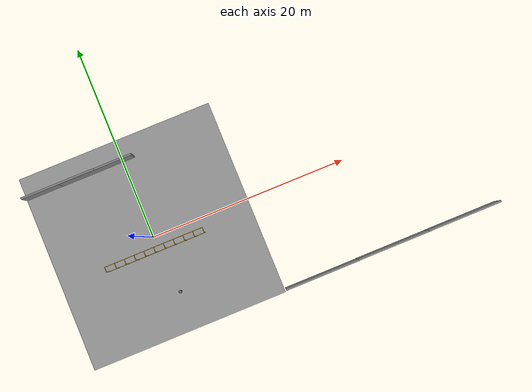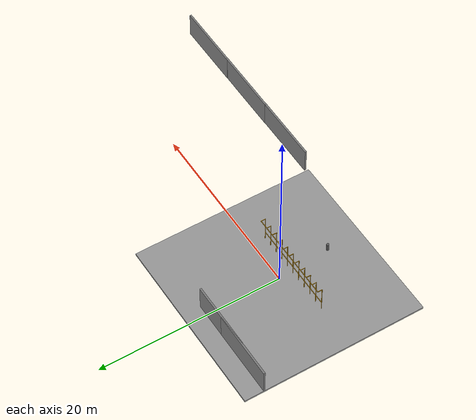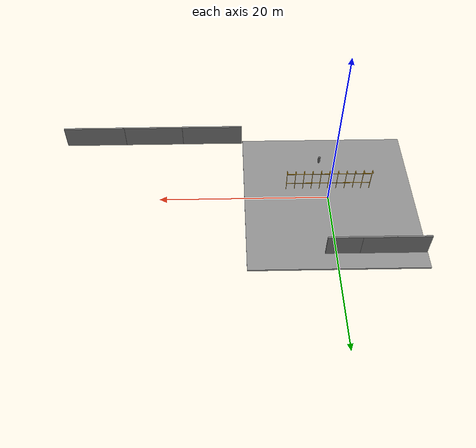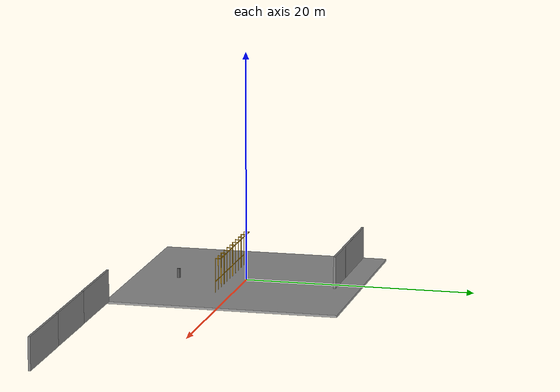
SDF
<sdf version="1.9">
 <world name="factory">
  <plugin filename="gz-sim-physics-system" name="gz::sim::systems::Physics"/>
  <plugin filename="gz-sim-user-commands-system" name="gz::sim::systems::UserCommands"/>
  <plugin filename="gz-sim-scene-broadcaster-system" name="gz::sim::systems::SceneBroadcaster"/>
  <plugin filename="gz-sim-sensors-system" name="gz::sim::systems::Sensors">
   <render_engine>ogre2</render_engine>
  </plugin>
  <plugin filename="gz-sim-particle-emitter-system" name="gz::sim::systems::ParticleEmitter"/>
  <light name="sun" type="directional">
   <cast_shadows>0</cast_shadows>
   <pose>0 0 10 0 -0 0</pose>
   <diffuse>0.8 0.8 0.8 1</diffuse>
   <specular>0.2 0.2 0.2 1</specular>
   <attenuation>
    <range>1000</range>
    <constant>0.9</constant>
    <linear>0.01</linear>
    <quadratic>0.001</quadratic>
   </attenuation>
   <direction>-0.5 0.1 -0.9</direction>
  </light>
  <gravity>0 0 -9.8</gravity>
  <magnetic_field>6e-06 2.3e-05 -4.2e-05</magnetic_field>
  <atmosphere type="adiabatic"/>
  <physics name="5ms" type="dart">
   <max_step_size>0.005</max_step_size>
   <real_time_factor>1.0</real_time_factor>
   <dart><collision_detector>bullet</collision_detector></dart>
  </physics>
  <scene><ambient>0.4 0.4 0.4 1</ambient><background>0.7 0.7 0.7 1</background><shadows>0</shadows></scene>
  <spherical_coordinates>
   <surface_model>EARTH_WGS84</surface_model>
   <latitude_deg>0</latitude_deg>
   <longitude_deg>0</longitude_deg>
   <elevation>0</elevation>
   <heading_deg>0</heading_deg>
  </spherical_coordinates>
  <model name="workcell">
   <static>1</static>
   <link name="link">
    <visual name="visual">
     <pose>0 0 -0.1 0 0 0</pose>
     <geometry><box><size>20.1026 20.1026 0.2</size></box></geometry>
     <material><ambient>0.6 0.6 0.6 1</ambient><diffuse>0.6 0.6 0.6 1</diffuse></material>
    </visual>
    <collision name="floor">
     <pose>0 0 -0.1 0 -0 0</pose>
     <geometry><box><size>20.1026 20.1026 0.2</size></box></geometry>
     <surface><contact><ode><max_vel>0</max_vel><min_depth>0.001</min_depth></ode></contact></surface>
    </collision>
    <collision name="wall1">
     <pose>4.13686 -10.0212 3.48855 0 -0 0</pose>
     <geometry><box><size>12.0768 0.72902 6.97771</size></box></geometry>
    </collision>
    <collision name="wall2">
     <pose>-6.58151 -8.924 3.48855 0 -0 0</pose>
     <geometry><box><size>10.5921 5.00198 6.97771</size></box></geometry>
    </collision>
    <collision name="wall3">
     <pose>-9.25721 0.6135 3.48855 0 -0 0</pose>
     <geometry><box><size>0.72902 15.2908 6.97771</size></box></geometry>
    </collision>
    <collision name="rack1">
     <pose>7.35056 1.7443 1.41643 0 -0 0</pose>
     <geometry><box><size>0.84444 1.95581 2.83286</size></box></geometry>
    </collision>
    <collision name="rack2">
     <pose>5.36795 1.7443 1.41643 0 -0 0</pose>
     <geometry><box><size>0.84444 1.95581 2.83286</size></box></geometry>
    </collision>
    <collision name="rack3">
     <pose>7.00142 -7.6467 1.41643 0 -0 0</pose>
     <geometry><box><size>0.84444 3.91162 2.83286</size></box></geometry>
    </collision>
    <collision name="rack4">
     <pose>4.97338 -7.6467 1.41643 0 -0 0</pose>
     <geometry><box><size>0.84444 3.91162 2.83286</size></box></geometry>
    </collision>
    <collision name="rack5">
     <pose>2.66949 -7.6467 1.41643 0 -0 0</pose>
     <geometry><box><size>0.84444 3.91162 2.83286</size></box></geometry>
    </collision>
    <collision name="large_pallet1">
     <pose>-3.33609 6.31883 1.04257 0 -0 0</pose>
     <geometry><box><size>2.14726 1.79349 2.08514</size></box></geometry>
    </collision>
    <collision name="large_pallet2">
     <pose>-5.74492 6.31883 1.04257 0 -0 0</pose>
     <geometry><box><size>2.14726 1.79349 2.08514</size></box></geometry>
    </collision>
    <collision name="large_pallet3">
     <pose>-7.55868 1.91644 1.04257 0 -0 0</pose>
     <geometry><box><size>2.14726 1.79432 2.08514</size></box></geometry>
    </collision>
    <collision name="empty_pallet1">
     <pose>-5.29667 1.91644 0.1636 0 -0 0</pose>
     <geometry><box><size>2.14726 1.79349 0.3272</size></box></geometry>
    </collision>
    <collision name="box_pallet1">
     <pose>-1.09806 6.31883 0.61958 0 -0 0</pose>
     <geometry><box><size>2.14726 1.79349 1.23916</size></box></geometry>
    </collision>
    <collision name="pole1">
     <pose>5.02174 -2.39478 3.02208 0 -0 0</pose>
     <geometry><box><size>0.49161 0.49161 6.04415</size></box></geometry>
    </collision>
    <collision name="pole2">
     <pose>0.47071 -2.39478 3.02208 0 -0 0</pose>
     <geometry><box><size>0.49161 0.49161 6.04415</size></box></geometry>
    </collision>
    <collision name="pole3">
     <pose>-3.93786 -2.39478 3.02208 0 -0 0</pose>
     <geometry><box><size>0.49161 0.49161 6.04415</size></box></geometry>
    </collision>
    <collision name="control_panel">
     <pose>2.07015 1.16224 0.561315 0 -0 0</pose>
     <geometry><box><size>0.86733 0.6001 1.12263</size></box></geometry>
    </collision>
    <visual name="conveyor_frame_1">
     <pose>0 -1.21 3 0 -0 0</pose>
     <geometry><box><size>10 0.05 0.05</size></box></geometry>
     <material><ambient>0.72549 0.517647 0 1</ambient><diffuse>0.72549 0.517647 0 1</diffuse></material>
    </visual>
    <collision name="conveyor_frame_1_collision">
     <pose>0 -1.21 3 0 -0 0</pose>
     <geometry><box><size>10 0.05 0.05</size></box></geometry>
    </collision>
    <visual name="conveyor_frame_2">
     <pose>0 -1.7 0.95 0 -0 0</pose>
     <geometry><box><size>10 0.05 0.05</size></box></geometry>
     <material><ambient>0.72549 0.517647 0 1</ambient><diffuse>0.72549 0.517647 0 1</diffuse></material>
    </visual>
    <collision name="conveyor_frame_2_collision">
     <pose>0 -1.7 0.95 0 -0 0</pose>
     <geometry><box><size>10 0.05 0.05</size></box></geometry>
    </collision>
    <visual name="conveyor_frame_3">
     <pose>5 -1.7 1.5 0 -0 0</pose>
     <geometry><box><size>0.05 0.05 3</size></box></geometry>
     <material><ambient>0.72549 0.517647 0 1</ambient><diffuse>0.72549 0.517647 0 1</diffuse></material>
    </visual>
    <collision name="conveyor_frame_3_collision">
     <pose>5 -1.7 1.5 0 -0 0</pose>
     <geometry><box><size>0.05 0.05 3</size></box></geometry>
    </collision>
    <visual name="conveyor_frame_4">
     <pose>5 -1.455 3 0 -0 0</pose>
     <geometry><box><size>0.05 0.54 0.05</size></box></geometry>
     <material><ambient>0.72549 0.517647 0 1</ambient><diffuse>0.72549 0.517647 0 1</diffuse></material>
    </visual>
    <collision name="conveyor_frame_3_collision_2">
     <pose>5 -1.455 3 0 -0 0</pose>
     <geometry><box><size>0.05 0.54 0.05</size></box></geometry>
    </collision>
    <visual name="conveyor_frame_5">
     <pose>4 -1.7 1.5 0 -0 0</pose>
     <geometry><box><size>0.05 0.05 3</size></box></geometry>
     <material><ambient>0.72549 0.517647 0 1</ambient><diffuse>0.72549 0.517647 0 1</diffuse></material>
    </visual>
    <collision name="conveyor_frame_5_collision">
     <pose>4 -1.7 1.5 0 -0 0</pose>
     <geometry><box><size>0.05 0.05 3</size></box></geometry>
    </collision>
    <visual name="conveyor_frame_6">
     <pose>4 -1.455 3 0 -0 0</pose>
     <geometry><box><size>0.05 0.54 0.05</size></box></geometry>
     <material><ambient>0.72549 0.517647 0 1</ambient><diffuse>0.72549 0.517647 0 1</diffuse></material>
    </visual>
    <collision name="conveyor_frame_6_collision">
     <pose>4 -1.455 3 0 -0 0</pose>
     <geometry><box><size>0.05 0.54 0.05</size></box></geometry>
    </collision>
    <visual name="conveyor_frame_7">
     <pose>3 -1.7 1.5 0 -0 0</pose>
     <geometry><box><size>0.05 0.05 3</size></box></geometry>
     <material><ambient>0.72549 0.517647 0 1</ambient><diffuse>0.72549 0.517647 0 1</diffuse></material>
    </visual>
    <collision name="conveyor_frame_7_collision">
     <pose>3 -1.7 1.5 0 -0 0</pose>
     <geometry><box><size>0.05 0.05 3</size></box></geometry>
    </collision>
    <visual name="conveyor_frame_8">
     <pose>3 -1.455 3 0 -0 0</pose>
     <geometry><box><size>0.05 0.54 0.05</size></box></geometry>
     <material><ambient>0.72549 0.517647 0 1</ambient><diffuse>0.72549 0.517647 0 1</diffuse></material>
    </visual>
    <collision name="conveyor_frame_8_collision">
     <pose>3 -1.455 3 0 -0 0</pose>
     <geometry><box><size>0.05 0.54 0.05</size></box></geometry>
    </collision>
    <visual name="conveyor_frame_9">
     <pose>2 -1.7 1.5 0 -0 0</pose>
     <geometry><box><size>0.05 0.05 3</size></box></geometry>
     <material><ambient>0.72549 0.517647 0 1</ambient><diffuse>0.72549 0.517647 0 1</diffuse></material>
    </visual>
    <collision name="conveyor_frame_9_collision">
     <pose>2 -1.7 1.5 0 -0 0</pose>
     <geometry><box><size>0.05 0.05 3</size></box></geometry>
    </collision>
    <visual name="conveyor_frame_10">
     <pose>2 -1.455 3 0 -0 0</pose>
     <geometry><box><size>0.05 0.54 0.05</size></box></geometry>
     <material><ambient>0.72549 0.517647 0 1</ambient><diffuse>0.72549 0.517647 0 1</diffuse></material>
    </visual>
    <collision name="conveyor_frame_10_collision">
     <pose>2 -1.455 3 0 -0 0</pose>
     <geometry><box><size>0.05 0.54 0.05</size></box></geometry>
    </collision>
    <visual name="conveyor_frame_11">
     <pose>1 -1.7 1.5 0 -0 0</pose>
     <geometry><box><size>0.05 0.05 3</size></box></geometry>
     <material><ambient>0.72549 0.517647 0 1</ambient><diffuse>0.72549 0.517647 0 1</diffuse></material>
    </visual>
    <collision name="conveyor_frame_11_collision">
     <pose>1 -1.7 1.5 0 -0 0</pose>
     <geometry><box><size>0.05 0.05 3</size></box></geometry>
    </collision>
    <visual name="conveyor_frame_12">
     <pose>1 -1.455 3 0 -0 0</pose>
     <geometry><box><size>0.05 0.54 0.05</size></box></geometry>
     <material><ambient>0.72549 0.517647 0 1</ambient><diffuse>0.72549 0.517647 0 1</diffuse></material>
    </visual>
    <collision name="conveyor_frame_12_collision">
     <pose>1 -1.455 3 0 -0 0</pose>
     <geometry><box><size>0.05 0.54 0.05</size></box></geometry>
    </collision>
    <visual name="conveyor_frame_13">
     <pose>0 -1.7 1.5 0 -0 0</pose>
     <geometry><box><size>0.05 0.05 3</size></box></geometry>
     <material><ambient>0.72549 0.517647 0 1</ambient><diffuse>0.72549 0.517647 0 1</diffuse></material>
    </visual>
    <collision name="conveyor_frame_13_collision">
     <pose>0 -1.7 1.5 0 -0 0</pose>
     <geometry><box><size>0.05 0.05 3</size></box></geometry>
    </collision>
    <visual name="conveyor_frame_14">
     <pose>0 -1.455 3 0 -0 0</pose>
     <geometry><box><size>0.05 0.54 0.05</size></box></geometry>
     <material><ambient>0.72549 0.517647 0 1</ambient><diffuse>0.72549 0.517647 0 1</diffuse></material>
    </visual>
    <collision name="conveyor_frame_14_collision">
     <pose>0 -1.455 3 0 -0 0</pose>
     <geometry><box><size>0.05 0.54 0.05</size></box></geometry>
    </collision>
    <visual name="conveyor_frame_15">
     <pose>-1 -1.7 1.5 0 -0 0</pose>
     <geometry><box><size>0.05 0.05 3</size></box></geometry>
     <material><ambient>0.72549 0.517647 0 1</ambient><diffuse>0.72549 0.517647 0 1</diffuse></material>
    </visual>
    <collision name="conveyor_frame_15_collision">
     <pose>-1 -1.7 1.5 0 -0 0</pose>
     <geometry><box><size>0.05 0.05 3</size></box></geometry>
    </collision>
    <visual name="conveyor_frame_16">
     <pose>-1 -1.455 3 0 -0 0</pose>
     <geometry><box><size>0.05 0.54 0.05</size></box></geometry>
     <material><ambient>0.72549 0.517647 0 1</ambient><diffuse>0.72549 0.517647 0 1</diffuse></material>
    </visual>
    <collision name="conveyor_frame_16_collision">
     <pose>-1 -1.455 3 0 -0 0</pose>
     <geometry><box><size>0.05 0.54 0.05</size></box></geometry>
    </collision>
    <visual name="conveyor_frame_17">
     <pose>-2 -1.7 1.5 0 -0 0</pose>
     <geometry><box><size>0.05 0.05 3</size></box></geometry>
     <material><ambient>0.72549 0.517647 0 1</ambient><diffuse>0.72549 0.517647 0 1</diffuse></material>
    </visual>
    <collision name="conveyor_frame_17_collision">
     <pose>-2 -1.7 1.5 0 -0 0</pose>
     <geometry><box><size>0.05 0.05 3</size></box></geometry>
    </collision>
    <visual name="conveyor_frame_18">
     <pose>-2 -1.455 3 0 -0 0</pose>
     <geometry><box><size>0.05 0.54 0.05</size></box></geometry>
     <material><ambient>0.72549 0.517647 0 1</ambient><diffuse>0.72549 0.517647 0 1</diffuse></material>
    </visual>
    <collision name="conveyor_frame_18_collision">
     <pose>-2 -1.455 3 0 -0 0</pose>
     <geometry><box><size>0.05 0.54 0.05</size></box></geometry>
    </collision>
    <visual name="conveyor_frame_19">
     <pose>-3 -1.7 1.5 0 -0 0</pose>
     <geometry><box><size>0.05 0.05 3</size></box></geometry>
     <material><ambient>0.72549 0.517647 0 1</ambient><diffuse>0.72549 0.517647 0 1</diffuse></material>
    </visual>
    <collision name="conveyor_frame_19_collision">
     <pose>-3 -1.7 1.5 0 -0 0</pose>
     <geometry><box><size>0.05 0.05 3</size></box></geometry>
    </collision>
    <visual name="conveyor_frame_20">
     <pose>-3 -1.455 3 0 -0 0</pose>
     <geometry><box><size>0.05 0.54 0.05</size></box></geometry>
     <material><ambient>0.72549 0.517647 0 1</ambient><diffuse>0.72549 0.517647 0 1</diffuse></material>
    </visual>
    <collision name="conveyor_frame_20_collision">
     <pose>-3 -1.455 3 0 -0 0</pose>
     <geometry><box><size>0.05 0.54 0.05</size></box></geometry>
    </collision>
    <visual name="conveyor_frame_21">
     <pose>-4 -1.7 1.5 0 -0 0</pose>
     <geometry><box><size>0.05 0.05 3</size></box></geometry>
     <material><ambient>0.72549 0.517647 0 1</ambient><diffuse>0.72549 0.517647 0 1</diffuse></material>
    </visual>
    <collision name="conveyor_frame_21_collision">
     <pose>-4 -1.7 1.5 0 -0 0</pose>
     <geometry><box><size>0.05 0.05 3</size></box></geometry>
    </collision>
    <visual name="conveyor_frame_22">
     <pose>-4 -1.455 3 0 -0 0</pose>
     <geometry><box><size>0.05 0.54 0.05</size></box></geometry>
     <material><ambient>0.72549 0.517647 0 1</ambient><diffuse>0.72549 0.517647 0 1</diffuse></material>
    </visual>
    <collision name="conveyor_frame_22_collision">
     <pose>-4 -1.455 3 0 -0 0</pose>
     <geometry><box><size>0.05 0.54 0.05</size></box></geometry>
    </collision>
    <visual name="conveyor_frame_23">
     <pose>-5 -1.7 1.5 0 -0 0</pose>
     <geometry><box><size>0.05 0.05 3</size></box></geometry>
     <material><ambient>0.72549 0.517647 0 1</ambient><diffuse>0.72549 0.517647 0 1</diffuse></material>
    </visual>
    <collision name="conveyor_frame_23_collision">
     <pose>-5 -1.7 1.5 0 -0 0</pose>
     <geometry><box><size>0.05 0.05 3</size></box></geometry>
    </collision>
    <visual name="conveyor_frame_24">
     <pose>-5 -1.455 3 0 -0 0</pose>
     <geometry><box><size>0.05 0.54 0.05</size></box></geometry>
     <material><ambient>0.72549 0.517647 0 1</ambient><diffuse>0.72549 0.517647 0 1</diffuse></material>
    </visual>
    <collision name="conveyor_frame_24_collision">
     <pose>-5 -1.455 3 0 -0 0</pose>
     <geometry><box><size>0.05 0.54 0.05</size></box></geometry>
    </collision>
   </link>
   <pose>-0.086987 0.210744 0 0 -0 0</pose>
  </model>
  <model name="grey_wall">
   <static>1</static>
   <link name="link">
    <pose>0 0 1.4 0 -0 0</pose>
    <collision name="collision"><geometry><box><size>7.5 0.2 2.8</size></box></geometry></collision>
    <visual name="visual">
     <cast_shadows>0</cast_shadows>
     <geometry><box><size>7.5 0.2 2.8</size></box></geometry>
     <material><ambient>0.5 0.5 0.5 1</ambient><diffuse>0.5 0.5 0.5 1</diffuse></material>
    </visual>
   </link>
   <pose>-6.34942 8.1136 0 0 -0 0</pose>
  </model>
  <model name="grey_wall_clone">
   <static>1</static>
   <link name="link">
    <pose>0 0 1.4 0 -0 0</pose>
    <collision name="collision"><geometry><box><size>7.5 0.2 2.8</size></box></geometry></collision>
    <visual name="visual">
     <cast_shadows>0</cast_shadows>
     <geometry><box><size>7.5 0.2 2.8</size></box></geometry>
     <material><ambient>0.5 0.5 0.5 1</ambient><diffuse>0.5 0.5 0.5 1</diffuse></material>
    </visual>
   </link>
   <pose>-2.50623 8.09985 0 0 -0 0</pose>
  </model>
  <model name="grey_wall_clone_0">
   <static>1</static>
   <link name="link">
    <pose>0 0 1.4 0 -0 0</pose>
    <collision name="collision"><geometry><box><size>7.5 0.2 2.8</size></box></geometry></collision>
    <visual name="visual">
     <cast_shadows>0</cast_shadows>
     <geometry><box><size>7.5 0.2 2.8</size></box></geometry>
     <material><ambient>0.5 0.5 0.5 1</ambient><diffuse>0.5 0.5 0.5 1</diffuse></material>
    </visual>
   </link>
   <pose>13.8347 -9.52636 0 0 -0 0</pose>
  </model>
  <model name="grey_wall_clone_1">
   <static>1</static>
   <link name="link">
    <pose>0 0 1.4 0 -0 0</pose>
    <collision name="collision"><geometry><box><size>7.5 0.2 2.8</size></box></geometry></collision>
    <visual name="visual">
     <cast_shadows>0</cast_shadows>
     <geometry><box><size>7.5 0.2 2.8</size></box></geometry>
     <material><ambient>0.5 0.5 0.5 1</ambient><diffuse>0.5 0.5 0.5 1</diffuse></material>
    </visual>
   </link>
   <pose>21.3028 -9.50574 0 0 -0 0</pose>
  </model>
  <model name="grey_wall_clone_2">
   <static>1</static>
   <link name="link">
    <pose>0 0 1.4 0 -0 0</pose>
    <collision name="collision"><geometry><box><size>7.5 0.2 2.8</size></box></geometry></collision>
    <visual name="visual">
     <cast_shadows>0</cast_shadows>
     <geometry><box><size>7.5 0.2 2.8</size></box></geometry>
     <material><ambient>0.5 0.5 0.5 1</ambient><diffuse>0.5 0.5 0.5 1</diffuse></material>
    </visual>
   </link>
   <pose>28.5426 -9.49059 0 0 -0 0</pose>
  </model>
  <model name="robot_pedestal">
   <static>true</static>
   <pose>0.50 -5.90 0.40 0 0 0</pose>
   <link name="link">
    <collision name="collision">
     <geometry><cylinder><radius>0.15</radius><length>0.80</length></cylinder></geometry>
    </collision>
    <visual name="visual">
     <geometry><cylinder><radius>0.15</radius><length>0.80</length></cylinder></geometry>
     <material>
      <ambient>0.25 0.25 0.25 1</ambient>
      <diffuse>0.35 0.35 0.35 1</diffuse>
      <specular>0.1 0.1 0.1 1</specular>
     </material>
    </visual>
   </link>
  </model>
 </world>
</sdf>
